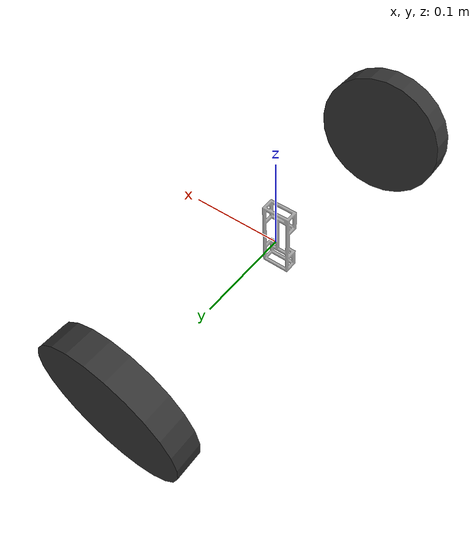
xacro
<?xml version="1.0"?>
<robot xmlns:xacro="http://www.ros.org/wiki/xacro" name="material_transfer_robot">
  <xacro:property name="body_length" value="0.40"/>
  <xacro:property name="body_width" value="0.30"/>
  <xacro:property name="body_height" value="0.70"/>
  <xacro:property name="camera_height" value="0.746"/>
  <xacro:property name="camera_forward" value="0.174"/>
  <xacro:property name="camera_tilt" value="0.523"/>
  <xacro:property name="wheel_radius" value="0.075"/>
  <xacro:property name="wheel_width" value="0.026"/>
  <xacro:property name="wheel_y_offset" value="0.063"/>
  <!-- BASE LINK -->
  <link name="base_link">
    <visual>
      <geometry>
        <mesh filename="package://robot_description/meshes/body.stl" scale="0.0001 0.0001 0.0001"/>
      </geometry>
      <!-- Adjust origin if mesh origin doesn't align with base_link -->
      <origin xyz="0 0 0" rpy="0 0 0"/>
      <material name="grey">
        <color rgba="0.6 0.6 0.6 0.8"/>
      </material>
    </visual>
    <collision>
      <!-- Keep box for collision — simpler, faster -->
      <geometry>
        <box size="${body_length} ${body_width} ${body_height}"/>
      </geometry>
      <origin xyz="0 0 ${body_height/2}" rpy="0 0 0"/>
    </collision>
  </link>
  <!-- ZED CAMERA -->
  <joint name="base_to_camera_joint" type="fixed">
    <parent link="base_link"/>
    <child link="zed_camera_link"/>
    <origin xyz="${camera_forward} 0 ${camera_height}" rpy="0 ${camera_tilt} 0"/>
  </joint>
  <link name="zed_camera_link"/>
  <!-- LEFT WHEEL -->
  <joint name="left_wheel_joint" type="fixed">
    <parent link="base_link"/>
    <child link="left_wheel"/>
    <origin xyz="0 ${body_width/2 + wheel_y_offset} 0" rpy="${-pi/2} 0 0"/>
  </joint>
  <link name="left_wheel">
    <visual>
      <geometry>
        <cylinder radius="${wheel_radius}" length="${wheel_width}"/>
      </geometry>
      <material name="dark_grey">
        <color rgba="0.2 0.2 0.2 1.0"/>
      </material>
    </visual>
  </link>
  <!-- RIGHT WHEEL -->
  <joint name="right_wheel_joint" type="fixed">
    <parent link="base_link"/>
    <child link="right_wheel"/>
    <origin xyz="0 ${-body_width/2 - wheel_y_offset} 0" rpy="${-pi/2} 0 0"/>
  </joint>
  <link name="right_wheel">
    <visual>
      <geometry>
        <cylinder radius="${wheel_radius}" length="${wheel_width}"/>
      </geometry>
      <material name="dark_grey">
        <color rgba="0.2 0.2 0.2 1.0"/>
      </material>
    </visual>
  </link>
</robot>
